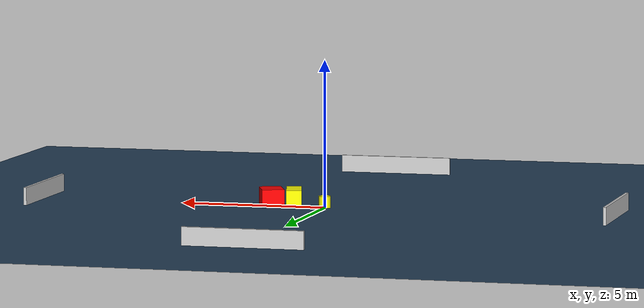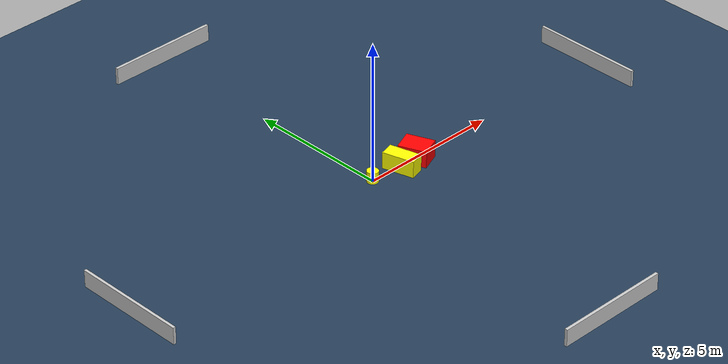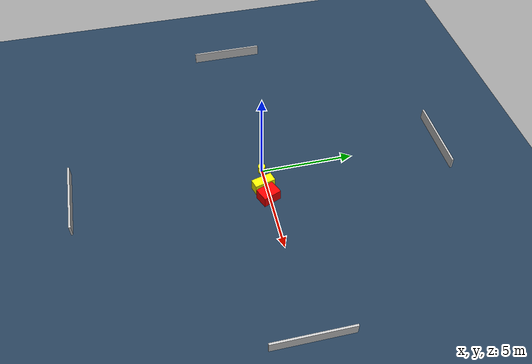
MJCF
<?xml version="1.0" ?>
<mujoco model="generated_environment">
  <option timestep="0.01" integrator="RK4" cone="elliptic"/>
  <default>
    <geom density="1"/>
  </default>
  <asset>
    <texture builtin="gradient" height="3072" name="skybox" rgb1="0.3 0.5 0.7" rgb2="0 0 0" type="skybox" width="512"/>
    <texture builtin="checker" height="300" name="groundplane" rgb1="0.2 0.3 0.4" rgb2="0.1 0.2 0.3" type="2d" width="300"/>
    <material name="groundplane" reflectance="0.2" texrepeat="5 5" texture="groundplane"/>
  </asset>
  <worldbody>
    <light dir="0 0 -1" directional="true" pos="0 0 1.5"/>
    <geom condim="3" friction="0.5 0.005 0.001" material="groundplane" name="floor" pos="0 0 0" size="0 0 0.05" type="plane"/>
    <body name="walls">
      <geom name="wall_1" condim="4" pos="-10.0 0.0 0.3" rgba="0.800000011920929 0.800000011920929 0.800000011920929 1.0" size="0.05 2.0 0.3" type="box"/>
      <geom name="wall_2" condim="4" pos="10.0 0.0 0.3" rgba="0.800000011920929 0.800000011920929 0.800000011920929 1.0" size="0.05 2.0 0.3" type="box"/>
      <geom name="wall_3" condim="4" pos="0.0 -10.0 0.3" rgba="0.800000011920929 0.800000011920929 0.800000011920929 1.0" size="2.0 0.05 0.3" type="box"/>
      <geom name="wall_4" condim="4" pos="0.0 10.0 0.3" rgba="0.800000011920929 0.800000011920929 0.800000011920929 1.0" size="2.0 0.05 0.3" type="box"/>
    </body>
    <body name="robot">
      <joint name="joint_x" type="slide" pos="0 0 0" axis="1 0 0"/>
      <joint name="joint_y" type="slide" pos="0 0 0" axis="0 1 0"/>
      <geom name="robot" type="cylinder" pos="0.0 0.0 0.2" size="0.2 0.2 0.0" mass="5.0" friction="1.0 0.005 0.0001" condim="4" rgba="1.0 1.0 0.0 1.0"/>
    </body>
    <body name="obstacle_1_movable">
      <geom name="obstacle_1_movable" condim="4" pos="1.122213582238112 -0.16695459101649462 0.3" euler="0 0 195.280836580424" friction="0.0 0.005 0.001" rgba="1.0 1.0 0.0 1.0" size="0.256361557635681 0.5626679485129031 0.3" type="box" mass="0.1"/>
      <joint type="free"/>
    </body>
    <body name="obstacle_2_static">
      <geom name="obstacle_2_static" condim="4" pos="1.8788919587506476 -0.06537830485973947 0.3" euler="0 0 22.394807249655308" friction="0.0 0.005 0.001" rgba="1.0 0.0 0.0 1.0" size="0.3779020336825939 0.49369845004617474 0.3" type="box"/>
    </body>
  </worldbody>
  <actuator>
    <motor name="actuator_x" joint="joint_x" gear="1" ctrlrange="-1 1"/>
    <motor name="actuator_y" joint="joint_y" gear="1" ctrlrange="-1 1"/>
  </actuator>
</mujoco>
